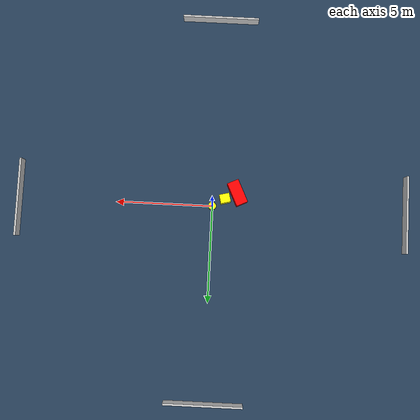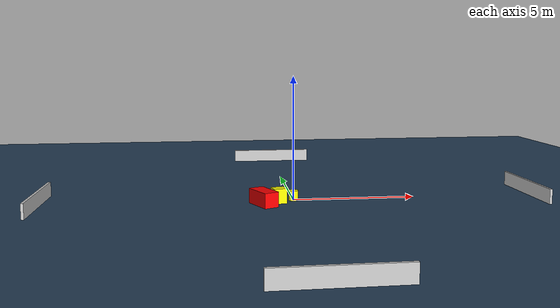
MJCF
<?xml version="1.0" ?>
<mujoco model="generated_environment">
  <option timestep="0.01" integrator="RK4" cone="elliptic"/>
  <default>
    <geom density="1"/>
  </default>
  <asset>
    <texture builtin="gradient" height="3072" name="skybox" rgb1="0.3 0.5 0.7" rgb2="0 0 0" type="skybox" width="512"/>
    <texture builtin="checker" height="300" name="groundplane" rgb1="0.2 0.3 0.4" rgb2="0.1 0.2 0.3" type="2d" width="300"/>
    <material name="groundplane" reflectance="0.2" texrepeat="5 5" texture="groundplane"/>
  </asset>
  <worldbody>
    <light dir="0 0 -1" directional="true" pos="0 0 1.5"/>
    <geom condim="3" friction="0.5 0.005 0.001" material="groundplane" name="floor" pos="0 0 0" size="0 0 0.05" type="plane"/>
    <body name="walls">
      <geom name="wall_1" condim="4" pos="-10.0 0.0 0.3" rgba="0.800000011920929 0.800000011920929 0.800000011920929 1.0" size="0.05 2.0 0.3" type="box"/>
      <geom name="wall_2" condim="4" pos="10.0 0.0 0.3" rgba="0.800000011920929 0.800000011920929 0.800000011920929 1.0" size="0.05 2.0 0.3" type="box"/>
      <geom name="wall_3" condim="4" pos="0.0 -10.0 0.3" rgba="0.800000011920929 0.800000011920929 0.800000011920929 1.0" size="2.0 0.05 0.3" type="box"/>
      <geom name="wall_4" condim="4" pos="0.0 10.0 0.3" rgba="0.800000011920929 0.800000011920929 0.800000011920929 1.0" size="2.0 0.05 0.3" type="box"/>
    </body>
    <body name="robot">
      <joint name="joint_x" type="slide" pos="0 0 0" axis="1 0 0"/>
      <joint name="joint_y" type="slide" pos="0 0 0" axis="0 1 0"/>
      <geom name="robot" type="cylinder" pos="0.0 0.0 0.2" size="0.2 0.2 0.0" mass="5.0" friction="1.0 0.005 0.0001" condim="4" rgba="1.0 1.0 0.0 1.0"/>
    </body>
    <body name="obstacle_1_movable">
      <geom name="obstacle_1_movable" condim="4" pos="-0.6376812870569518 -0.4061895502591152 0.3" euler="0 0 14.103606209899024" friction="0.0 0.005 0.001" rgba="1.0 1.0 0.0 1.0" size="0.2632704409666364 0.23308088406983363 0.3" type="box" mass="0.1"/>
      <joint type="free"/>
    </body>
    <body name="obstacle_2_static">
      <geom name="obstacle_2_static" condim="4" pos="-1.2641031372149245 -0.7251228020177632 0.3" euler="0 0 115.34976031578154" friction="0.0 0.005 0.001" rgba="1.0 0.0 0.0 1.0" size="0.6288318885413992 0.3064353209737736 0.3" type="box"/>
    </body>
  </worldbody>
  <actuator>
    <motor name="actuator_x" joint="joint_x" gear="1" ctrlrange="-1 1"/>
    <motor name="actuator_y" joint="joint_y" gear="1" ctrlrange="-1 1"/>
  </actuator>
</mujoco>
